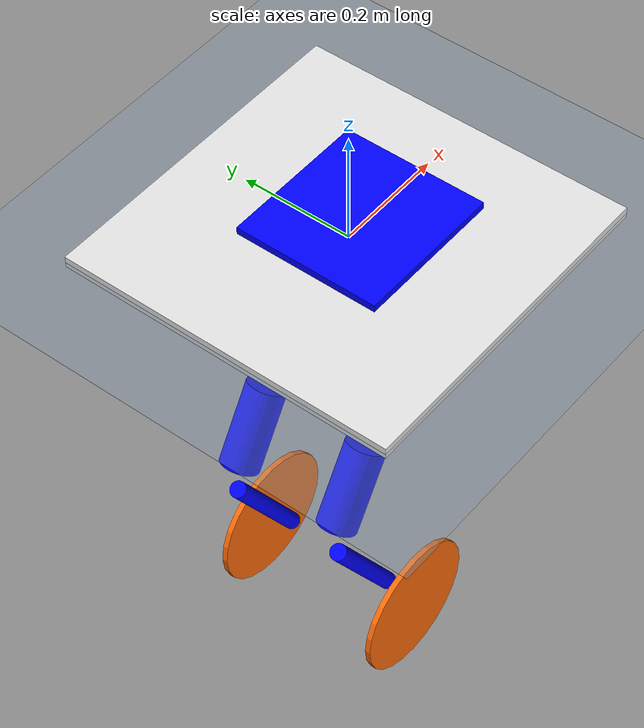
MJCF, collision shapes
<mujoco model="robot_object">
  <compiler angle="radian" meshdir="../meshes/" />
    <size njmax="500" nconmax="100" />

    <default>
        <light castshadow="false" diffuse="1 1 1" />
        <camera fovy="60"/>
        <default class="visual">
            <geom contype="0" conaffinity="0" group="1" type="mesh" rgba="0.9 0.9 0.9 1.0"/>
        </default>
        <joint armature="0.01" damping="0.01"/>
        <geom contype="1" conaffinity="1" condim="3" friction="0.1 0.005 0.0001" rgba="0.5 0.6 0.7 0.0" margin="0.001" group="0" />
    </default>
    <visual>
        <rgba com="0.502 1.0 0 0.5" contactpoint="1.0 1.0 0.6 0.4" contactforce="0.2 0.98 0.2 0.8"/>
        <scale com="0.2" forcewidth="0.05" contactwidth="0.10" contactheight="0.04"/>
    </visual>

    <asset>
        <mesh name="base_Link" file="base_Link.STL" />
        <mesh name="abad_L_Link" file="abad_L_Link.STL" />
        <mesh name="hip_L_Link" file="hip_L_Link.STL" />
        <mesh name="knee_L_Link" file="knee_L_Link.STL" />
        <mesh name="wheel_L_Link" file="wheel_L_Link.STL" />
        <mesh name="abad_R_Link" file="abad_R_Link.STL" />
        <mesh name="hip_R_Link" file="hip_R_Link.STL" />
        <mesh name="knee_R_Link" file="knee_R_Link.STL" />
        <mesh name="wheel_R_Link" file="wheel_R_Link.STL" />
    </asset>

    <asset>
        <texture type='skybox' builtin='gradient' width='512' height='512' rgb1="1.0 1.0 1.0" rgb2="1.0 1.0 1.0"/>
        <texture name="texplane" type="2d" builtin="checker" rgb1="0.35 0.35 0.35" rgb2="0.55 0.55 0.55" width="512" height="512" mark="cross" markrgb=".8 .8 .8"/>
        <material name="matplane" reflectance="0.0" texture="texplane" texrepeat="1 1" texuniform="true"/>
    </asset>
        <option timestep="0.001" noslip_iterations="10"/>

    <keyframe>
        <!-- only robot stand up -->

        <!-- two legs parallel to retrieve object -->
        <key name="0" qpos="0 0 0.70   1 0 0 0   0 0.4242 -0.9558 0   0 0.4581 -1.0328 0   0 -0.2  0.01   1 0 0 0" />
        <key name="1" qpos="0 0 0.6   1 0 0 0   0.5236 0.5236 -1.0472 0   -0.54 0.55 -1.1 0    0 -0.4  0.01   1 0 0 0" />

        <!-- one leg forward to retrieve object -->

        <!-- scooting  but need use the larger object-->

    </keyframe>

    <equality>
        <weld name="fix_torso" body1="base_Link" relpose="0 0 -.8 1 0 0 0" solimp="0.9 0.95 0.001 0.5 2" solref="0.02 1"/>
    </equality>

    <worldbody>
        <geom name="floor" rgba="0.5 0.6 0.7 1" pos="0 0 0" size="0 0 0.25" type="plane" material="matplane" condim="3"/>
        <camera name="track" mode="trackcom" pos="0 -2.3 1.6" xyaxes="1 0 0 0 0.707 0.707"/>
        <light directional="true" diffuse=".8 .8 .8" pos="0 0 10" dir="0 0 -10"/>

        <body name="base_Link" pos="0 0 0">
            <inertial pos="0.0457123 0.000139854 -0.163809" quat="0.972578 -0.00615364 -0.232461 0.00398682" mass="9.595" diaginertia="0.154712 0.11093 0.0846371" />
            <joint type="free" limited="false" damping="0.0000" stiffness="0.0000" armature="0"/>
            <site name="imu" pos="0 0 0"/>
            <geom class="visual" rgba="0.79216 0.81961 0.93333 1" mesh="base_Link" />
            <geom name="base_collision" size="0.135 0.13 0.095" pos="0.03 0 -0.072" type="box" rgba="0 0 1 0" />

            <body name="abad_L_Link" pos="0.05556 0.105 -0.2602">
                <inertial pos="-0.06977 0.04479 0.00057" quat="0.595024 0.579772 0.394141 0.393019" mass="1.469" diaginertia="0.00252289 0.00208104 0.00139163" />
                <joint name="abad_L_Joint" pos="0 0 0" axis="1 0 0" limited="true" range="-0.38397 1.39626" />
                <geom class="visual" rgba="0.79216 0.81961 0.93333 1" mesh="abad_L_Link" />
                <geom name="abad_L_collision" type="cylinder" pos="-0.08 0 0" euler="1.57 0 0" size="0.05 0.025" rgba="0 0 1 0" />

                <body name="hip_L_Link" pos="-0.077 0.0205 0">
                    <inertial pos="-0.02869 -0.0477 -0.03992" quat="0.853885 0.192797 0.226903 0.426877" mass="2.3" diaginertia="0.0233264 0.0230229 0.00277548" />
                    <joint name="hip_L_Joint" pos="0 0 0" axis="0 1 0" limited="true" range="-1.01229 1.39626" />
                    <geom class="visual" rgba="1 1 1 1" mesh="hip_L_Link" />
                    <geom name="hip_L_collision" type="cylinder" pos="-0.1 -0.025 -0.14" euler="0 0.53 0" size="0.035 0.075" rgba="0 0 1 0" />

                    <body name="knee_L_Link" pos="-0.15 -0.0205 -0.25981">
                        <inertial pos="0.11913 0.01106 -0.20363" quat="0.687012 -0.159981 -0.201582 0.679548" mass="1.49" diaginertia="0.0177107 0.0171855 0.001015" />
                        <joint name="knee_L_Joint" pos="0 0 0" axis="0 1 0" limited="true" range="-1.36136 0.872665" />
                        <geom class="visual" rgba="0.79216 0.81961 0.93333 1" mesh="knee_L_Link" />
                        <geom name="knee_L_collision" type="cylinder" pos="0.078 0 -0.12" euler="0 -0.55 0" size="0.015 0.13" rgba ="0 0 1 0"/>

                        <body name="wheel_L_Link" pos="0.15 0.0435 -0.25981">
                            <inertial pos="3e-05 0.00807 -2e-05" quat="0.683013 0.183016 0.183017 0.683011" mass="1.08" diaginertia="0.00974272 0.00515568 0.00515344" />
                            <joint name="wheel_L_Joint" pos="0 0 0" axis="0 1 0" limited="true" range="-1000000 1000000" frictionloss="0.01" />
                            <geom class="visual" rgba="0.26667 0.26667 0.26667 1" mesh="wheel_L_Link" />
                            <geom name="wheel_L_collision" pos="0.0 0.008 0.0" size="0.127 0.005" quat="0.707107 0.707107 0 0" type="cylinder" rgba="1 0.423529 0.0392157 1"   friction="0.9 0.005 0.0001" />
                        </body>
                    </body>
                </body>
            </body>
            <body name="abad_R_Link" pos="0.05556 -0.105 -0.2602">
                <inertial pos="-0.06977 -0.04479 0.00057" quat="0.393019 0.394141 0.579772 0.595024" mass="1.469" diaginertia="0.00252289 0.00208104 0.00139163" />
                <joint name="abad_R_Joint" pos="0 0 0" axis="1 0 0" limited="true" range="-1.39626 0.38397" />
                <geom class="visual" rgba="0.79216 0.81961 0.93333 1" mesh="abad_R_Link" />
                <geom name="abad_R_collision" type="cylinder" pos="-0.08 0 0" euler="1.57 0 0" size="0.05 0.025" rgba="0 0 1 0" />

                <body name="hip_R_Link" pos="-0.077 -0.0205 0">
                    <inertial pos="-0.02869 0.0477 -0.03992" quat="0.426877 0.226903 0.192797 0.853885" mass="2.3" diaginertia="0.0233264 0.0230229 0.00277548" />
                    <joint name="hip_R_Joint" pos="0 0 0" axis="0 1 0" limited="true" range="-1.01229 1.39626" />
                    <geom class="visual" rgba="1 1 1 1" mesh="hip_R_Link" />
                    <geom name="hip_R_collision" type="cylinder" pos="-0.10 0.025 -0.14" euler="0 0.53 0" size="0.035 0.075" rgba="0 0 1 0" />

                    <body name="knee_R_Link" pos="-0.15 0.0205 -0.25981">
                        <inertial pos="0.11913 -0.01106 -0.20363" quat="0.679548 -0.201582 -0.159981 0.687012" mass="1.49" diaginertia="0.0177107 0.0171855 0.001015" />
                        <joint name="knee_R_Joint" pos="0 0 0" axis="0 1 0" limited="true" range="-1.36136 0.872665" />
                        <geom class="visual" rgba="0.79216 0.81961 0.93333 1" mesh="knee_R_Link" />
                        <geom name="knee_R_collision" type="cylinder" pos="0.078 0 -0.12" euler="0 -0.55 0" size="0.015 0.13" rgba ="0 0 1 0"/>

                        <body name="wheel_R_Link" pos="0.15 -0.0435 -0.25981">
                            <inertial pos="3e-05 -0.00807 -2e-05" quat="0.683011 0.183017 0.183016 0.683013" mass="1.08" diaginertia="0.00974272 0.00515568 0.00515344" />
                            <joint name="wheel_R_Joint" pos="0 0 0" axis="0 1 0" limited="true" range="-1000000 1000000" frictionloss="0.01" />
                            <geom class="visual" rgba="0.26667 0.26667 0.26667 1" mesh="wheel_R_Link" />
                            <geom name="wheel_R_collision" pos="0.0 -0.008 0.0" size="0.127 0.005" quat="0.707107 0.707107 0 0" type="cylinder" rgba="1 0.423529 0.0392157 1"  friction="0.9 0.005 0.0001" />
                        </body>
                    </body>
                </body>
            </body>
        </body>
    </worldbody>

  <statistic center="0 0 0.1" extent="0.8"/>
  <visual>
    <headlight diffuse="0.6 0.6 0.6" ambient="0.3 0.3 0.3" specular="0 0 0"/>
    <rgba haze="0.15 0.25 0.35 1"/>
    <global azimuth="-130" elevation="-20"/>
  </visual>

  <asset>
    <texture type="skybox" builtin="gradient" rgb1="0.3 0.5 0.7" rgb2="0 0 0" width="512" height="3072"/>
    <texture type="2d" name="groundplane" builtin="checker" mark="edge" rgb1="0.2 0.3 0.4" rgb2="0.1 0.2 0.3"
      markrgb="0.8 0.8 0.8" width="300" height="300"/>
    <material name="groundplane" texture="groundplane" texuniform="true" texrepeat="5 5" reflectance="0.2"/>
  </asset>

  <worldbody>

    <!-- small object for retrieving -->
    <body>
      <inertial pos="0 0 0" quat="1 0 0 0" mass="1.0" diaginertia="0.0037 0.0037 0.0037" />
      <joint type="free" limited="false" damping="0.0000" stiffness="0.0000" armature="0"/>
      <geom class="visual" name="object" type="box" size="0.3 0.3 0.01" pos="0 0 0" quat="1 0 0 0"/>
      <geom name="object_collision" type="box" size="0.3 0.3 0.01" pos="0 0 0" quat="1 0 0 0" friction="0.5 0.005 0.0001"/>
    </body>

    <!-- big object for scooting  -->

  </worldbody>

    <actuator>
        <motor name="abad_L_Joint"   gear="1"  joint="abad_L_Joint"  ctrllimited='true' ctrlrange='-80 80'/>
        <motor name="hip_L_Joint"    gear="1"  joint="hip_L_Joint"   ctrllimited='true' ctrlrange='-80 80'/>
        <motor name="knee_L_Joint"   gear="1"  joint="knee_L_Joint"  ctrllimited='true' ctrlrange='-80 80'/>
        <motor name="wheel_L_Joint"  gear="1"  joint="wheel_L_Joint" ctrllimited='true' ctrlrange='-40 40'/>
        <motor name="abad_R_Joint"   gear="1"  joint="abad_R_Joint"  ctrllimited='true' ctrlrange='-80 80' />
        <motor name="hip_R_Joint"    gear="1"  joint="hip_R_Joint"   ctrllimited='true' ctrlrange='-80 80' />
        <motor name="knee_R_Joint"   gear="1"  joint="knee_R_Joint"  ctrllimited='true' ctrlrange='-80 80'/>
        <motor name="wheel_R_Joint"  gear="1"  joint="wheel_R_Joint" ctrllimited='true' ctrlrange='-40 40'/>
    </actuator>

    <sensor>
        <jointpos name="abad_L_Joint_pos"    joint="abad_L_Joint" noise="0.001"/>
        <jointpos name="hip_L_Joint_pos"     joint="hip_L_Joint" noise="0.001"/>
        <jointpos name="knee_L_Joint_pos"    joint="knee_L_Joint" noise="0.001"/>
        <jointpos name="wheel_L_Joint_pos"   joint="wheel_L_Joint" noise="0.001"/>
        <jointpos name="abad_R_Joint_pos"    joint="abad_R_Joint" noise="0.001"/>
        <jointpos name="hip_R_Joint_pos"     joint="hip_R_Joint" noise="0.001"/>
        <jointpos name="knee_R_Joint_pos"    joint="knee_R_Joint" noise="0.001"/>
        <jointpos name="wheel_R_Joint_pos"   joint="wheel_R_Joint" noise="0.001"/>

        <jointvel name="abad_L_Joint_vel"    joint="abad_L_Joint" noise="0.01"/>
        <jointvel name="hip_L_Joint_vel"     joint="hip_L_Joint" noise="0.01"/>
        <jointvel name="knee_L_Joint_vel"    joint="knee_L_Joint" noise="0.01"/>
        <jointvel name="wheel_L_Joint_vel"   joint="wheel_L_Joint" noise="0.01"/>
        <jointvel name="abad_R_Joint_vel"    joint="abad_R_Joint" noise="0.01"/>
        <jointvel name="hip_R_Joint_vel"     joint="hip_R_Joint" noise="0.01"/>
        <jointvel name="knee_R_Joint_vel"    joint="knee_R_Joint" noise="0.01"/>
        <jointvel name="wheel_R_Joint_vel"   joint="wheel_R_Joint" noise="0.01"/>

        <jointactuatorfrc name="abad_L_Joint_torque"    joint="abad_L_Joint" noise="0.01"/>
        <jointactuatorfrc name="hip_L_Joint_torque"     joint="hip_L_Joint" noise="0.01"/>
        <jointactuatorfrc name="knee_L_Joint_torque"    joint="knee_L_Joint" noise="0.01"/>
        <jointactuatorfrc name="wheel_L_Joint_torque"   joint="wheel_L_Joint" noise="0.01"/>
        <jointactuatorfrc name="abad_R_Joint_torque"    joint="abad_R_Joint" noise="0.01"/>
        <jointactuatorfrc name="hip_R_Joint_torque"     joint="hip_R_Joint" noise="0.01"/>
        <jointactuatorfrc name="knee_R_Joint_torque"    joint="knee_R_Joint" noise="0.01"/>
        <jointactuatorfrc name="wheel_R_Joint_torque"   joint="wheel_R_Joint" noise="0.01"/>

        <framequat name="imu_quat" objtype="site" objname="imu" noise="0.001"/>
        <gyro name="imu_gyro" site="imu" noise="0.01"/>
        <accelerometer name="imu_acc" site="imu" noise="0.01"/>

        <framepos name="frame_pos" objtype="site" objname="imu" />
        <framelinvel name="frame_vel" objtype="site" objname="imu" />

    </sensor>

</mujoco>
